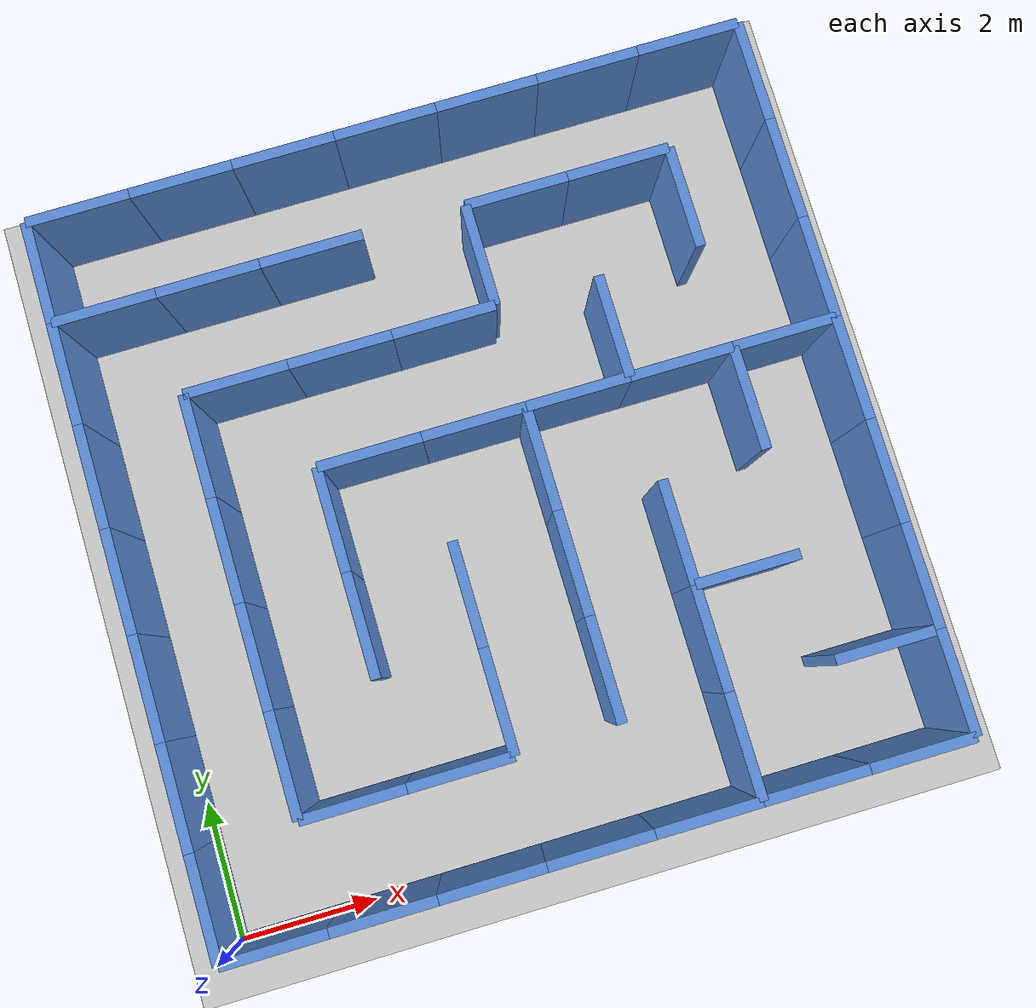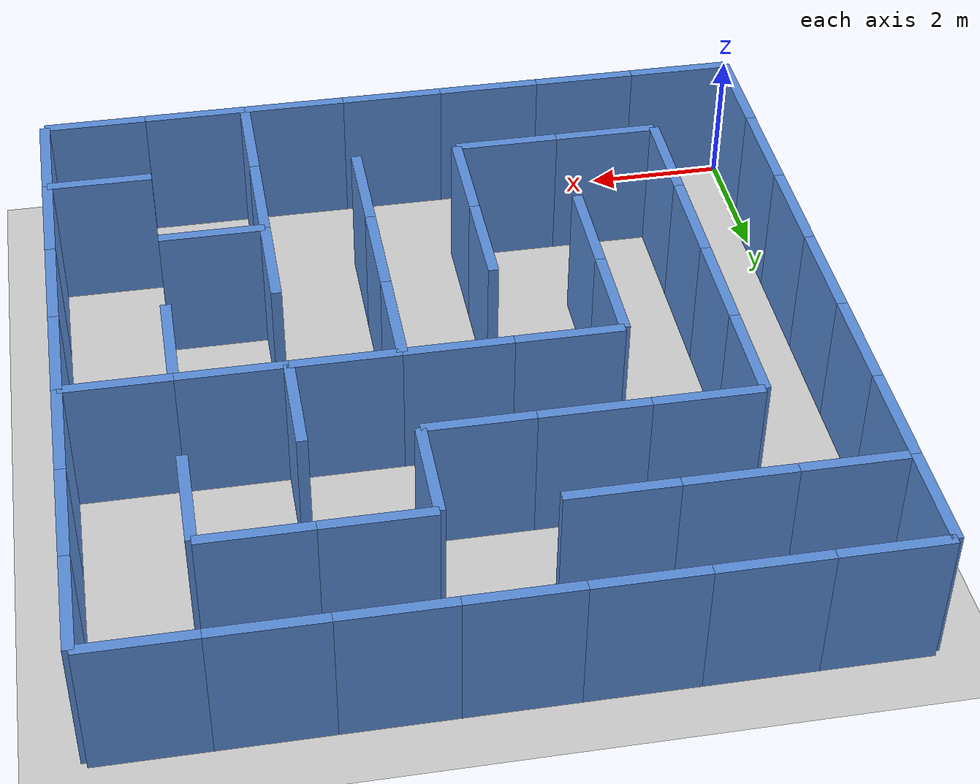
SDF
<?xml version='1.0'?>
<sdf version='1.7'>
  <world name='maze'>
    <light name='sun' type='directional'>
      <cast_shadows>0</cast_shadows>
      <pose>0 0 10 0 -0 0</pose>
      <diffuse>0.8 0.8 0.8 1</diffuse>
      <specular>0.2 0.2 0.2 1</specular>
      <direction>-0.5 0.1 -0.9</direction>
    </light>
    <model name='ground_plane'>
      <static>1</static>
      <link name='link'>
        <collision name='collision'>
          <geometry><plane><normal>0 0 1</normal><size>100 100</size></plane></geometry>
          <surface><friction><ode><mu>100</mu><mu2>50</mu2></ode></friction><contact><ode/></contact><bounce/></surface>
        </collision>
        <visual name='visual'>
          <cast_shadows>0</cast_shadows>
          <geometry><plane><normal>0 0 1</normal><size>100 100</size></plane></geometry>
          <material><script><uri>file://media/materials/scripts/gazebo.material</uri><name>Gazebo/Grey</name></script></material>
        </visual>
        <self_collide>0</self_collide>
      </link>
    </model>
    <model name='maze_walls'>
      <static>1</static>
      <link name='wall_0'>
        <pose>0.0 0.75 1.0 0 0 0</pose>
        <collision name='collision'>
          <geometry><box><size>0.15 1.5 2.0</size></box></geometry>
        </collision>
        <visual name='visual'>
          <geometry><box><size>0.15 1.5 2.0</size></box></geometry>
          <material><ambient>0.35 0.55 0.85 1</ambient><diffuse>0.35 0.55 0.85 1</diffuse></material>
        </visual>
      </link>
      <link name='wall_1'>
        <pose>7.5 0.75 1.0 0 0 0</pose>
        <collision name='collision'>
          <geometry><box><size>0.15 1.5 2.0</size></box></geometry>
        </collision>
        <visual name='visual'>
          <geometry><box><size>0.15 1.5 2.0</size></box></geometry>
          <material><ambient>0.35 0.55 0.85 1</ambient><diffuse>0.35 0.55 0.85 1</diffuse></material>
        </visual>
      </link>
      <link name='wall_2'>
        <pose>10.5 0.75 1.0 0 0 0</pose>
        <collision name='collision'>
          <geometry><box><size>0.15 1.5 2.0</size></box></geometry>
        </collision>
        <visual name='visual'>
          <geometry><box><size>0.15 1.5 2.0</size></box></geometry>
          <material><ambient>0.35 0.55 0.85 1</ambient><diffuse>0.35 0.55 0.85 1</diffuse></material>
        </visual>
      </link>
      <link name='wall_3'>
        <pose>0.0 2.25 1.0 0 0 0</pose>
        <collision name='collision'>
          <geometry><box><size>0.15 1.5 2.0</size></box></geometry>
        </collision>
        <visual name='visual'>
          <geometry><box><size>0.15 1.5 2.0</size></box></geometry>
          <material><ambient>0.35 0.55 0.85 1</ambient><diffuse>0.35 0.55 0.85 1</diffuse></material>
        </visual>
      </link>
      <link name='wall_4'>
        <pose>1.5 2.25 1.0 0 0 0</pose>
        <collision name='collision'>
          <geometry><box><size>0.15 1.5 2.0</size></box></geometry>
        </collision>
        <visual name='visual'>
          <geometry><box><size>0.15 1.5 2.0</size></box></geometry>
          <material><ambient>0.35 0.55 0.85 1</ambient><diffuse>0.35 0.55 0.85 1</diffuse></material>
        </visual>
      </link>
      <link name='wall_5'>
        <pose>4.5 2.25 1.0 0 0 0</pose>
        <collision name='collision'>
          <geometry><box><size>0.15 1.5 2.0</size></box></geometry>
        </collision>
        <visual name='visual'>
          <geometry><box><size>0.15 1.5 2.0</size></box></geometry>
          <material><ambient>0.35 0.55 0.85 1</ambient><diffuse>0.35 0.55 0.85 1</diffuse></material>
        </visual>
      </link>
      <link name='wall_6'>
        <pose>6.0 2.25 1.0 0 0 0</pose>
        <collision name='collision'>
          <geometry><box><size>0.15 1.5 2.0</size></box></geometry>
        </collision>
        <visual name='visual'>
          <geometry><box><size>0.15 1.5 2.0</size></box></geometry>
          <material><ambient>0.35 0.55 0.85 1</ambient><diffuse>0.35 0.55 0.85 1</diffuse></material>
        </visual>
      </link>
      <link name='wall_7'>
        <pose>7.5 2.25 1.0 0 0 0</pose>
        <collision name='collision'>
          <geometry><box><size>0.15 1.5 2.0</size></box></geometry>
        </collision>
        <visual name='visual'>
          <geometry><box><size>0.15 1.5 2.0</size></box></geometry>
          <material><ambient>0.35 0.55 0.85 1</ambient><diffuse>0.35 0.55 0.85 1</diffuse></material>
        </visual>
      </link>
      <link name='wall_8'>
        <pose>10.5 2.25 1.0 0 0 0</pose>
        <collision name='collision'>
          <geometry><box><size>0.15 1.5 2.0</size></box></geometry>
        </collision>
        <visual name='visual'>
          <geometry><box><size>0.15 1.5 2.0</size></box></geometry>
          <material><ambient>0.35 0.55 0.85 1</ambient><diffuse>0.35 0.55 0.85 1</diffuse></material>
        </visual>
      </link>
      <link name='wall_9'>
        <pose>0.0 3.75 1.0 0 0 0</pose>
        <collision name='collision'>
          <geometry><box><size>0.15 1.5 2.0</size></box></geometry>
        </collision>
        <visual name='visual'>
          <geometry><box><size>0.15 1.5 2.0</size></box></geometry>
          <material><ambient>0.35 0.55 0.85 1</ambient><diffuse>0.35 0.55 0.85 1</diffuse></material>
        </visual>
      </link>
      <link name='wall_10'>
        <pose>1.5 3.75 1.0 0 0 0</pose>
        <collision name='collision'>
          <geometry><box><size>0.15 1.5 2.0</size></box></geometry>
        </collision>
        <visual name='visual'>
          <geometry><box><size>0.15 1.5 2.0</size></box></geometry>
          <material><ambient>0.35 0.55 0.85 1</ambient><diffuse>0.35 0.55 0.85 1</diffuse></material>
        </visual>
      </link>
      <link name='wall_11'>
        <pose>3.0 3.75 1.0 0 0 0</pose>
        <collision name='collision'>
          <geometry><box><size>0.15 1.5 2.0</size></box></geometry>
        </collision>
        <visual name='visual'>
          <geometry><box><size>0.15 1.5 2.0</size></box></geometry>
          <material><ambient>0.35 0.55 0.85 1</ambient><diffuse>0.35 0.55 0.85 1</diffuse></material>
        </visual>
      </link>
      <link name='wall_12'>
        <pose>4.5 3.75 1.0 0 0 0</pose>
        <collision name='collision'>
          <geometry><box><size>0.15 1.5 2.0</size></box></geometry>
        </collision>
        <visual name='visual'>
          <geometry><box><size>0.15 1.5 2.0</size></box></geometry>
          <material><ambient>0.35 0.55 0.85 1</ambient><diffuse>0.35 0.55 0.85 1</diffuse></material>
        </visual>
      </link>
      <link name='wall_13'>
        <pose>6.0 3.75 1.0 0 0 0</pose>
        <collision name='collision'>
          <geometry><box><size>0.15 1.5 2.0</size></box></geometry>
        </collision>
        <visual name='visual'>
          <geometry><box><size>0.15 1.5 2.0</size></box></geometry>
          <material><ambient>0.35 0.55 0.85 1</ambient><diffuse>0.35 0.55 0.85 1</diffuse></material>
        </visual>
      </link>
      <link name='wall_14'>
        <pose>7.5 3.75 1.0 0 0 0</pose>
        <collision name='collision'>
          <geometry><box><size>0.15 1.5 2.0</size></box></geometry>
        </collision>
        <visual name='visual'>
          <geometry><box><size>0.15 1.5 2.0</size></box></geometry>
          <material><ambient>0.35 0.55 0.85 1</ambient><diffuse>0.35 0.55 0.85 1</diffuse></material>
        </visual>
      </link>
      <link name='wall_15'>
        <pose>10.5 3.75 1.0 0 0 0</pose>
        <collision name='collision'>
          <geometry><box><size>0.15 1.5 2.0</size></box></geometry>
        </collision>
        <visual name='visual'>
          <geometry><box><size>0.15 1.5 2.0</size></box></geometry>
          <material><ambient>0.35 0.55 0.85 1</ambient><diffuse>0.35 0.55 0.85 1</diffuse></material>
        </visual>
      </link>
      <link name='wall_16'>
        <pose>0.0 5.25 1.0 0 0 0</pose>
        <collision name='collision'>
          <geometry><box><size>0.15 1.5 2.0</size></box></geometry>
        </collision>
        <visual name='visual'>
          <geometry><box><size>0.15 1.5 2.0</size></box></geometry>
          <material><ambient>0.35 0.55 0.85 1</ambient><diffuse>0.35 0.55 0.85 1</diffuse></material>
        </visual>
      </link>
      <link name='wall_17'>
        <pose>1.5 5.25 1.0 0 0 0</pose>
        <collision name='collision'>
          <geometry><box><size>0.15 1.5 2.0</size></box></geometry>
        </collision>
        <visual name='visual'>
          <geometry><box><size>0.15 1.5 2.0</size></box></geometry>
          <material><ambient>0.35 0.55 0.85 1</ambient><diffuse>0.35 0.55 0.85 1</diffuse></material>
        </visual>
      </link>
      <link name='wall_18'>
        <pose>3.0 5.25 1.0 0 0 0</pose>
        <collision name='collision'>
          <geometry><box><size>0.15 1.5 2.0</size></box></geometry>
        </collision>
        <visual name='visual'>
          <geometry><box><size>0.15 1.5 2.0</size></box></geometry>
          <material><ambient>0.35 0.55 0.85 1</ambient><diffuse>0.35 0.55 0.85 1</diffuse></material>
        </visual>
      </link>
      <link name='wall_19'>
        <pose>6.0 5.25 1.0 0 0 0</pose>
        <collision name='collision'>
          <geometry><box><size>0.15 1.5 2.0</size></box></geometry>
        </collision>
        <visual name='visual'>
          <geometry><box><size>0.15 1.5 2.0</size></box></geometry>
          <material><ambient>0.35 0.55 0.85 1</ambient><diffuse>0.35 0.55 0.85 1</diffuse></material>
        </visual>
      </link>
      <link name='wall_20'>
        <pose>9.0 5.25 1.0 0 0 0</pose>
        <collision name='collision'>
          <geometry><box><size>0.15 1.5 2.0</size></box></geometry>
        </collision>
        <visual name='visual'>
          <geometry><box><size>0.15 1.5 2.0</size></box></geometry>
          <material><ambient>0.35 0.55 0.85 1</ambient><diffuse>0.35 0.55 0.85 1</diffuse></material>
        </visual>
      </link>
      <link name='wall_21'>
        <pose>10.5 5.25 1.0 0 0 0</pose>
        <collision name='collision'>
          <geometry><box><size>0.15 1.5 2.0</size></box></geometry>
        </collision>
        <visual name='visual'>
          <geometry><box><size>0.15 1.5 2.0</size></box></geometry>
          <material><ambient>0.35 0.55 0.85 1</ambient><diffuse>0.35 0.55 0.85 1</diffuse></material>
        </visual>
      </link>
      <link name='wall_22'>
        <pose>0.0 6.75 1.0 0 0 0</pose>
        <collision name='collision'>
          <geometry><box><size>0.15 1.5 2.0</size></box></geometry>
        </collision>
        <visual name='visual'>
          <geometry><box><size>0.15 1.5 2.0</size></box></geometry>
          <material><ambient>0.35 0.55 0.85 1</ambient><diffuse>0.35 0.55 0.85 1</diffuse></material>
        </visual>
      </link>
      <link name='wall_23'>
        <pose>1.5 6.75 1.0 0 0 0</pose>
        <collision name='collision'>
          <geometry><box><size>0.15 1.5 2.0</size></box></geometry>
        </collision>
        <visual name='visual'>
          <geometry><box><size>0.15 1.5 2.0</size></box></geometry>
          <material><ambient>0.35 0.55 0.85 1</ambient><diffuse>0.35 0.55 0.85 1</diffuse></material>
        </visual>
      </link>
      <link name='wall_24'>
        <pose>7.5 6.75 1.0 0 0 0</pose>
        <collision name='collision'>
          <geometry><box><size>0.15 1.5 2.0</size></box></geometry>
        </collision>
        <visual name='visual'>
          <geometry><box><size>0.15 1.5 2.0</size></box></geometry>
          <material><ambient>0.35 0.55 0.85 1</ambient><diffuse>0.35 0.55 0.85 1</diffuse></material>
        </visual>
      </link>
      <link name='wall_25'>
        <pose>10.5 6.75 1.0 0 0 0</pose>
        <collision name='collision'>
          <geometry><box><size>0.15 1.5 2.0</size></box></geometry>
        </collision>
        <visual name='visual'>
          <geometry><box><size>0.15 1.5 2.0</size></box></geometry>
          <material><ambient>0.35 0.55 0.85 1</ambient><diffuse>0.35 0.55 0.85 1</diffuse></material>
        </visual>
      </link>
      <link name='wall_26'>
        <pose>0.0 8.25 1.0 0 0 0</pose>
        <collision name='collision'>
          <geometry><box><size>0.15 1.5 2.0</size></box></geometry>
        </collision>
        <visual name='visual'>
          <geometry><box><size>0.15 1.5 2.0</size></box></geometry>
          <material><ambient>0.35 0.55 0.85 1</ambient><diffuse>0.35 0.55 0.85 1</diffuse></material>
        </visual>
      </link>
      <link name='wall_27'>
        <pose>6.0 8.25 1.0 0 0 0</pose>
        <collision name='collision'>
          <geometry><box><size>0.15 1.5 2.0</size></box></geometry>
        </collision>
        <visual name='visual'>
          <geometry><box><size>0.15 1.5 2.0</size></box></geometry>
          <material><ambient>0.35 0.55 0.85 1</ambient><diffuse>0.35 0.55 0.85 1</diffuse></material>
        </visual>
      </link>
      <link name='wall_28'>
        <pose>9.0 8.25 1.0 0 0 0</pose>
        <collision name='collision'>
          <geometry><box><size>0.15 1.5 2.0</size></box></geometry>
        </collision>
        <visual name='visual'>
          <geometry><box><size>0.15 1.5 2.0</size></box></geometry>
          <material><ambient>0.35 0.55 0.85 1</ambient><diffuse>0.35 0.55 0.85 1</diffuse></material>
        </visual>
      </link>
      <link name='wall_29'>
        <pose>10.5 8.25 1.0 0 0 0</pose>
        <collision name='collision'>
          <geometry><box><size>0.15 1.5 2.0</size></box></geometry>
        </collision>
        <visual name='visual'>
          <geometry><box><size>0.15 1.5 2.0</size></box></geometry>
          <material><ambient>0.35 0.55 0.85 1</ambient><diffuse>0.35 0.55 0.85 1</diffuse></material>
        </visual>
      </link>
      <link name='wall_30'>
        <pose>0.0 9.75 1.0 0 0 0</pose>
        <collision name='collision'>
          <geometry><box><size>0.15 1.5 2.0</size></box></geometry>
        </collision>
        <visual name='visual'>
          <geometry><box><size>0.15 1.5 2.0</size></box></geometry>
          <material><ambient>0.35 0.55 0.85 1</ambient><diffuse>0.35 0.55 0.85 1</diffuse></material>
        </visual>
      </link>
      <link name='wall_31'>
        <pose>10.5 9.75 1.0 0 0 0</pose>
        <collision name='collision'>
          <geometry><box><size>0.15 1.5 2.0</size></box></geometry>
        </collision>
        <visual name='visual'>
          <geometry><box><size>0.15 1.5 2.0</size></box></geometry>
          <material><ambient>0.35 0.55 0.85 1</ambient><diffuse>0.35 0.55 0.85 1</diffuse></material>
        </visual>
      </link>
      <link name='wall_32'>
        <pose>0.75 0.0 1.0 0 0 0</pose>
        <collision name='collision'>
          <geometry><box><size>1.5 0.15 2.0</size></box></geometry>
        </collision>
        <visual name='visual'>
          <geometry><box><size>1.5 0.15 2.0</size></box></geometry>
          <material><ambient>0.35 0.55 0.85 1</ambient><diffuse>0.35 0.55 0.85 1</diffuse></material>
        </visual>
      </link>
      <link name='wall_33'>
        <pose>2.25 0.0 1.0 0 0 0</pose>
        <collision name='collision'>
          <geometry><box><size>1.5 0.15 2.0</size></box></geometry>
        </collision>
        <visual name='visual'>
          <geometry><box><size>1.5 0.15 2.0</size></box></geometry>
          <material><ambient>0.35 0.55 0.85 1</ambient><diffuse>0.35 0.55 0.85 1</diffuse></material>
        </visual>
      </link>
      <link name='wall_34'>
        <pose>3.75 0.0 1.0 0 0 0</pose>
        <collision name='collision'>
          <geometry><box><size>1.5 0.15 2.0</size></box></geometry>
        </collision>
        <visual name='visual'>
          <geometry><box><size>1.5 0.15 2.0</size></box></geometry>
          <material><ambient>0.35 0.55 0.85 1</ambient><diffuse>0.35 0.55 0.85 1</diffuse></material>
        </visual>
      </link>
      <link name='wall_35'>
        <pose>5.25 0.0 1.0 0 0 0</pose>
        <collision name='collision'>
          <geometry><box><size>1.5 0.15 2.0</size></box></geometry>
        </collision>
        <visual name='visual'>
          <geometry><box><size>1.5 0.15 2.0</size></box></geometry>
          <material><ambient>0.35 0.55 0.85 1</ambient><diffuse>0.35 0.55 0.85 1</diffuse></material>
        </visual>
      </link>
      <link name='wall_36'>
        <pose>6.75 0.0 1.0 0 0 0</pose>
        <collision name='collision'>
          <geometry><box><size>1.5 0.15 2.0</size></box></geometry>
        </collision>
        <visual name='visual'>
          <geometry><box><size>1.5 0.15 2.0</size></box></geometry>
          <material><ambient>0.35 0.55 0.85 1</ambient><diffuse>0.35 0.55 0.85 1</diffuse></material>
        </visual>
      </link>
      <link name='wall_37'>
        <pose>8.25 0.0 1.0 0 0 0</pose>
        <collision name='collision'>
          <geometry><box><size>1.5 0.15 2.0</size></box></geometry>
        </collision>
        <visual name='visual'>
          <geometry><box><size>1.5 0.15 2.0</size></box></geometry>
          <material><ambient>0.35 0.55 0.85 1</ambient><diffuse>0.35 0.55 0.85 1</diffuse></material>
        </visual>
      </link>
      <link name='wall_38'>
        <pose>9.75 0.0 1.0 0 0 0</pose>
        <collision name='collision'>
          <geometry><box><size>1.5 0.15 2.0</size></box></geometry>
        </collision>
        <visual name='visual'>
          <geometry><box><size>1.5 0.15 2.0</size></box></geometry>
          <material><ambient>0.35 0.55 0.85 1</ambient><diffuse>0.35 0.55 0.85 1</diffuse></material>
        </visual>
      </link>
      <link name='wall_39'>
        <pose>2.25 1.5 1.0 0 0 0</pose>
        <collision name='collision'>
          <geometry><box><size>1.5 0.15 2.0</size></box></geometry>
        </collision>
        <visual name='visual'>
          <geometry><box><size>1.5 0.15 2.0</size></box></geometry>
          <material><ambient>0.35 0.55 0.85 1</ambient><diffuse>0.35 0.55 0.85 1</diffuse></material>
        </visual>
      </link>
      <link name='wall_40'>
        <pose>3.75 1.5 1.0 0 0 0</pose>
        <collision name='collision'>
          <geometry><box><size>1.5 0.15 2.0</size></box></geometry>
        </collision>
        <visual name='visual'>
          <geometry><box><size>1.5 0.15 2.0</size></box></geometry>
          <material><ambient>0.35 0.55 0.85 1</ambient><diffuse>0.35 0.55 0.85 1</diffuse></material>
        </visual>
      </link>
      <link name='wall_41'>
        <pose>9.75 1.5 1.0 0 0 0</pose>
        <collision name='collision'>
          <geometry><box><size>1.5 0.15 2.0</size></box></geometry>
        </collision>
        <visual name='visual'>
          <geometry><box><size>1.5 0.15 2.0</size></box></geometry>
          <material><ambient>0.35 0.55 0.85 1</ambient><diffuse>0.35 0.55 0.85 1</diffuse></material>
        </visual>
      </link>
      <link name='wall_42'>
        <pose>8.25 3.0 1.0 0 0 0</pose>
        <collision name='collision'>
          <geometry><box><size>1.5 0.15 2.0</size></box></geometry>
        </collision>
        <visual name='visual'>
          <geometry><box><size>1.5 0.15 2.0</size></box></geometry>
          <material><ambient>0.35 0.55 0.85 1</ambient><diffuse>0.35 0.55 0.85 1</diffuse></material>
        </visual>
      </link>
      <link name='wall_43'>
        <pose>3.75 6.0 1.0 0 0 0</pose>
        <collision name='collision'>
          <geometry><box><size>1.5 0.15 2.0</size></box></geometry>
        </collision>
        <visual name='visual'>
          <geometry><box><size>1.5 0.15 2.0</size></box></geometry>
          <material><ambient>0.35 0.55 0.85 1</ambient><diffuse>0.35 0.55 0.85 1</diffuse></material>
        </visual>
      </link>
      <link name='wall_44'>
        <pose>5.25 6.0 1.0 0 0 0</pose>
        <collision name='collision'>
          <geometry><box><size>1.5 0.15 2.0</size></box></geometry>
        </collision>
        <visual name='visual'>
          <geometry><box><size>1.5 0.15 2.0</size></box></geometry>
          <material><ambient>0.35 0.55 0.85 1</ambient><diffuse>0.35 0.55 0.85 1</diffuse></material>
        </visual>
      </link>
      <link name='wall_45'>
        <pose>6.75 6.0 1.0 0 0 0</pose>
        <collision name='collision'>
          <geometry><box><size>1.5 0.15 2.0</size></box></geometry>
        </collision>
        <visual name='visual'>
          <geometry><box><size>1.5 0.15 2.0</size></box></geometry>
          <material><ambient>0.35 0.55 0.85 1</ambient><diffuse>0.35 0.55 0.85 1</diffuse></material>
        </visual>
      </link>
      <link name='wall_46'>
        <pose>8.25 6.0 1.0 0 0 0</pose>
        <collision name='collision'>
          <geometry><box><size>1.5 0.15 2.0</size></box></geometry>
        </collision>
        <visual name='visual'>
          <geometry><box><size>1.5 0.15 2.0</size></box></geometry>
          <material><ambient>0.35 0.55 0.85 1</ambient><diffuse>0.35 0.55 0.85 1</diffuse></material>
        </visual>
      </link>
      <link name='wall_47'>
        <pose>9.75 6.0 1.0 0 0 0</pose>
        <collision name='collision'>
          <geometry><box><size>1.5 0.15 2.0</size></box></geometry>
        </collision>
        <visual name='visual'>
          <geometry><box><size>1.5 0.15 2.0</size></box></geometry>
          <material><ambient>0.35 0.55 0.85 1</ambient><diffuse>0.35 0.55 0.85 1</diffuse></material>
        </visual>
      </link>
      <link name='wall_48'>
        <pose>2.25 7.5 1.0 0 0 0</pose>
        <collision name='collision'>
          <geometry><box><size>1.5 0.15 2.0</size></box></geometry>
        </collision>
        <visual name='visual'>
          <geometry><box><size>1.5 0.15 2.0</size></box></geometry>
          <material><ambient>0.35 0.55 0.85 1</ambient><diffuse>0.35 0.55 0.85 1</diffuse></material>
        </visual>
      </link>
      <link name='wall_49'>
        <pose>3.75 7.5 1.0 0 0 0</pose>
        <collision name='collision'>
          <geometry><box><size>1.5 0.15 2.0</size></box></geometry>
        </collision>
        <visual name='visual'>
          <geometry><box><size>1.5 0.15 2.0</size></box></geometry>
          <material><ambient>0.35 0.55 0.85 1</ambient><diffuse>0.35 0.55 0.85 1</diffuse></material>
        </visual>
      </link>
      <link name='wall_50'>
        <pose>5.25 7.5 1.0 0 0 0</pose>
        <collision name='collision'>
          <geometry><box><size>1.5 0.15 2.0</size></box></geometry>
        </collision>
        <visual name='visual'>
          <geometry><box><size>1.5 0.15 2.0</size></box></geometry>
          <material><ambient>0.35 0.55 0.85 1</ambient><diffuse>0.35 0.55 0.85 1</diffuse></material>
        </visual>
      </link>
      <link name='wall_51'>
        <pose>0.75 9.0 1.0 0 0 0</pose>
        <collision name='collision'>
          <geometry><box><size>1.5 0.15 2.0</size></box></geometry>
        </collision>
        <visual name='visual'>
          <geometry><box><size>1.5 0.15 2.0</size></box></geometry>
          <material><ambient>0.35 0.55 0.85 1</ambient><diffuse>0.35 0.55 0.85 1</diffuse></material>
        </visual>
      </link>
      <link name='wall_52'>
        <pose>2.25 9.0 1.0 0 0 0</pose>
        <collision name='collision'>
          <geometry><box><size>1.5 0.15 2.0</size></box></geometry>
        </collision>
        <visual name='visual'>
          <geometry><box><size>1.5 0.15 2.0</size></box></geometry>
          <material><ambient>0.35 0.55 0.85 1</ambient><diffuse>0.35 0.55 0.85 1</diffuse></material>
        </visual>
      </link>
      <link name='wall_53'>
        <pose>3.75 9.0 1.0 0 0 0</pose>
        <collision name='collision'>
          <geometry><box><size>1.5 0.15 2.0</size></box></geometry>
        </collision>
        <visual name='visual'>
          <geometry><box><size>1.5 0.15 2.0</size></box></geometry>
          <material><ambient>0.35 0.55 0.85 1</ambient><diffuse>0.35 0.55 0.85 1</diffuse></material>
        </visual>
      </link>
      <link name='wall_54'>
        <pose>6.75 9.0 1.0 0 0 0</pose>
        <collision name='collision'>
          <geometry><box><size>1.5 0.15 2.0</size></box></geometry>
        </collision>
        <visual name='visual'>
          <geometry><box><size>1.5 0.15 2.0</size></box></geometry>
          <material><ambient>0.35 0.55 0.85 1</ambient><diffuse>0.35 0.55 0.85 1</diffuse></material>
        </visual>
      </link>
      <link name='wall_55'>
        <pose>8.25 9.0 1.0 0 0 0</pose>
        <collision name='collision'>
          <geometry><box><size>1.5 0.15 2.0</size></box></geometry>
        </collision>
        <visual name='visual'>
          <geometry><box><size>1.5 0.15 2.0</size></box></geometry>
          <material><ambient>0.35 0.55 0.85 1</ambient><diffuse>0.35 0.55 0.85 1</diffuse></material>
        </visual>
      </link>
      <link name='wall_56'>
        <pose>0.75 10.5 1.0 0 0 0</pose>
        <collision name='collision'>
          <geometry><box><size>1.5 0.15 2.0</size></box></geometry>
        </collision>
        <visual name='visual'>
          <geometry><box><size>1.5 0.15 2.0</size></box></geometry>
          <material><ambient>0.35 0.55 0.85 1</ambient><diffuse>0.35 0.55 0.85 1</diffuse></material>
        </visual>
      </link>
      <link name='wall_57'>
        <pose>2.25 10.5 1.0 0 0 0</pose>
        <collision name='collision'>
          <geometry><box><size>1.5 0.15 2.0</size></box></geometry>
        </collision>
        <visual name='visual'>
          <geometry><box><size>1.5 0.15 2.0</size></box></geometry>
          <material><ambient>0.35 0.55 0.85 1</ambient><diffuse>0.35 0.55 0.85 1</diffuse></material>
        </visual>
      </link>
      <link name='wall_58'>
        <pose>3.75 10.5 1.0 0 0 0</pose>
        <collision name='collision'>
          <geometry><box><size>1.5 0.15 2.0</size></box></geometry>
        </collision>
        <visual name='visual'>
          <geometry><box><size>1.5 0.15 2.0</size></box></geometry>
          <material><ambient>0.35 0.55 0.85 1</ambient><diffuse>0.35 0.55 0.85 1</diffuse></material>
        </visual>
      </link>
      <link name='wall_59'>
        <pose>5.25 10.5 1.0 0 0 0</pose>
        <collision name='collision'>
          <geometry><box><size>1.5 0.15 2.0</size></box></geometry>
        </collision>
        <visual name='visual'>
          <geometry><box><size>1.5 0.15 2.0</size></box></geometry>
          <material><ambient>0.35 0.55 0.85 1</ambient><diffuse>0.35 0.55 0.85 1</diffuse></material>
        </visual>
      </link>
      <link name='wall_60'>
        <pose>6.75 10.5 1.0 0 0 0</pose>
        <collision name='collision'>
          <geometry><box><size>1.5 0.15 2.0</size></box></geometry>
        </collision>
        <visual name='visual'>
          <geometry><box><size>1.5 0.15 2.0</size></box></geometry>
          <material><ambient>0.35 0.55 0.85 1</ambient><diffuse>0.35 0.55 0.85 1</diffuse></material>
        </visual>
      </link>
      <link name='wall_61'>
        <pose>8.25 10.5 1.0 0 0 0</pose>
        <collision name='collision'>
          <geometry><box><size>1.5 0.15 2.0</size></box></geometry>
        </collision>
        <visual name='visual'>
          <geometry><box><size>1.5 0.15 2.0</size></box></geometry>
          <material><ambient>0.35 0.55 0.85 1</ambient><diffuse>0.35 0.55 0.85 1</diffuse></material>
        </visual>
      </link>
      <link name='wall_62'>
        <pose>9.75 10.5 1.0 0 0 0</pose>
        <collision name='collision'>
          <geometry><box><size>1.5 0.15 2.0</size></box></geometry>
        </collision>
        <visual name='visual'>
          <geometry><box><size>1.5 0.15 2.0</size></box></geometry>
          <material><ambient>0.35 0.55 0.85 1</ambient><diffuse>0.35 0.55 0.85 1</diffuse></material>
        </visual>
      </link>
    </model>
    <gravity>0 0 -9.8</gravity>
    <physics type='ode'><max_step_size>0.001</max_step_size><real_time_factor>1</real_time_factor><real_time_update_rate>1000</real_time_update_rate></physics>
    <scene><ambient>0.5 0.5 0.5 1</ambient><background>0.8 0.8 0.8 1</background><shadows>0</shadows></scene>
  </world>
</sdf>
